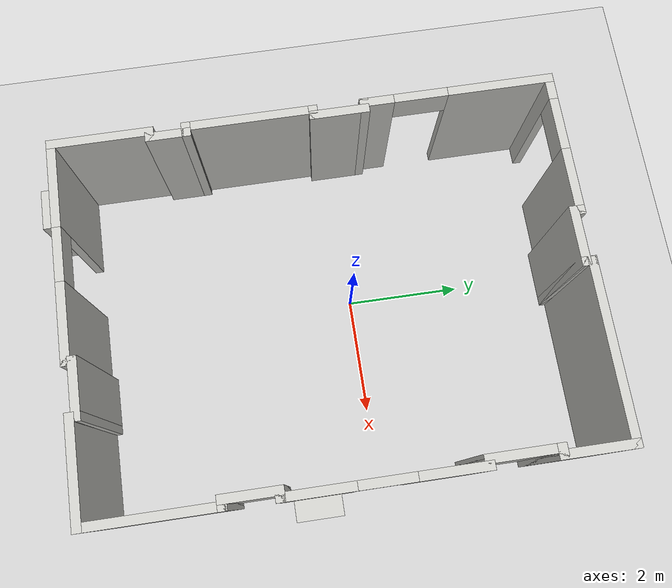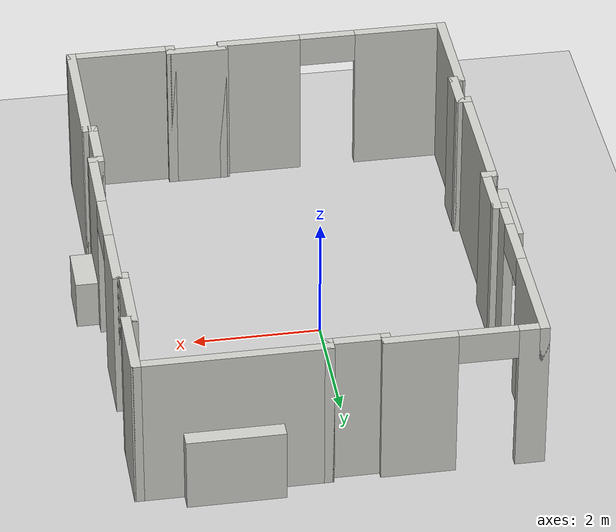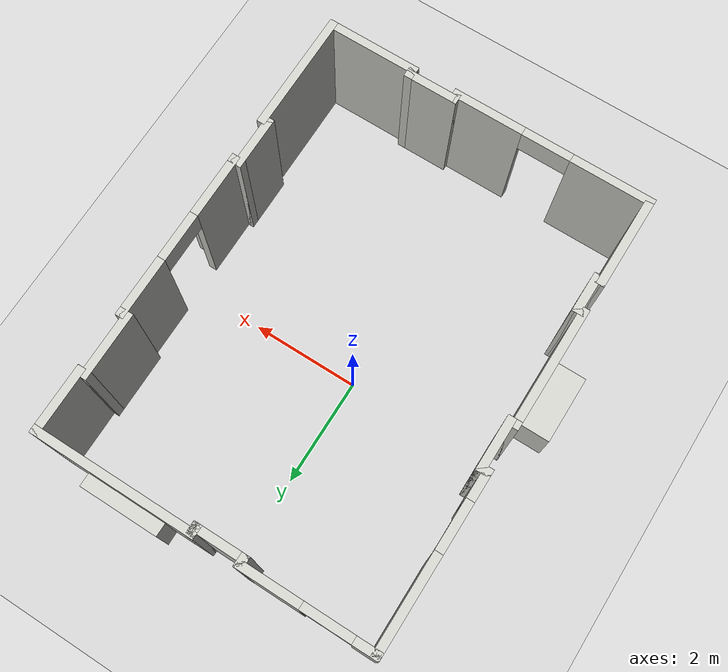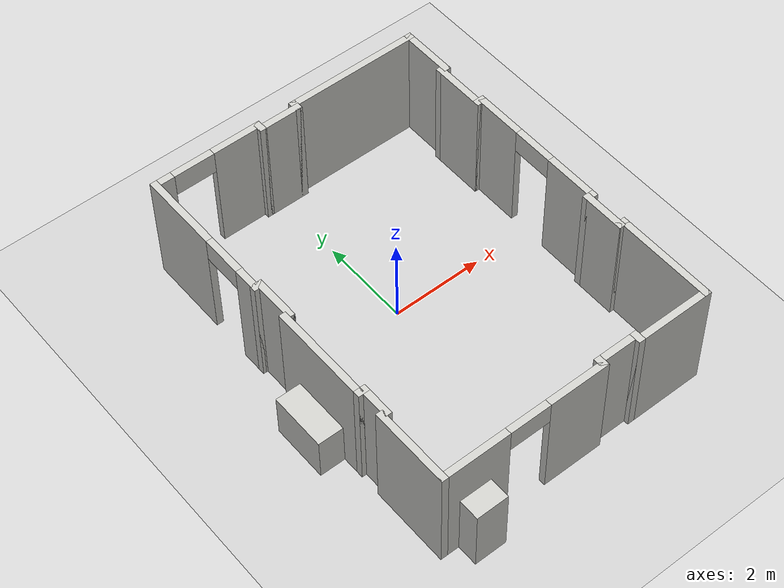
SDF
<sdf version="1.6">
 <world name="default">
  <model name="ground_plane">
   <static>1</static>
   <link name="link">
    <collision name="collision">
     <geometry><plane><normal>0 0 1</normal><size>100 100</size></plane></geometry>
     <surface><friction><ode><mu>100</mu><mu2>50</mu2></ode></friction></surface>
    </collision>
    <visual name="visual">
     <cast_shadows>0</cast_shadows>
     <geometry><plane><normal>0 0 1</normal><size>100 100</size></plane></geometry>
     <material>
      <script><uri>file://media/materials/scripts/gazebo.material</uri><name>Gazebo/Grey</name></script>
     </material>
    </visual>
   </link>
  </model>
  <model name="mcbryde_large">
   <pose>0.293658 -0.452731 0 0 -0 0</pose>
   <link name="Wall_0">
    <pose>-1.85 4.125 0 0 -0 0</pose>
    <visual name="Wall_0_Visual_0">
     <pose>-1.02043 0 1.25 0 -0 0</pose>
     <geometry><box><size>0.459131 0.15 2.5</size></box></geometry>
     <material>
      <script><uri>file://media/materials/scripts/gazebo.material</uri><name>Gazebo/CeilingTiled</name></script>
      <ambient>1 1 1 1</ambient>
     </material>
    </visual>
    <collision name="Wall_0_Collision_0">
     <geometry><box><size>0.459131 0.15 2.5</size></box></geometry>
     <pose>-1.02043 0 1.25 0 -0 0</pose>
    </collision>
    <visual name="Wall_0_Visual_1">
     <pose>0.679565 0 1.25 0 -0 0</pose>
     <geometry><box><size>1.14087 0.15 2.5</size></box></geometry>
     <material>
      <script><uri>file://media/materials/scripts/gazebo.material</uri><name>Gazebo/CeilingTiled</name></script>
      <ambient>1 1 1 1</ambient>
     </material>
    </visual>
    <collision name="Wall_0_Collision_1">
     <geometry><box><size>1.14087 0.15 2.5</size></box></geometry>
     <pose>0.679565 0 1.25 0 -0 0</pose>
    </collision>
    <visual name="Wall_0_Visual_2">
     <pose>-0.340869 0 2.25 0 -0 0</pose>
     <geometry><box><size>0.9 0.15 0.5</size></box></geometry>
     <material>
      <script><uri>file://media/materials/scripts/gazebo.material</uri><name>Gazebo/CeilingTiled</name></script>
      <ambient>1 1 1 1</ambient>
     </material>
    </visual>
    <collision name="Wall_0_Collision_2">
     <geometry><box><size>0.9 0.15 0.5</size></box></geometry>
     <pose>-0.340869 0 2.25 0 -0 0</pose>
    </collision>
   </link>
   <link name="Wall_10">
    <pose>3.025 0.375 0 0 0 -1.5708</pose>
    <visual name="Wall_10_Visual_0">
     <pose>-1.05477 0 1.25 0 -0 0</pose>
     <geometry><box><size>1.14046 0.15 2.5</size></box></geometry>
     <material>
      <script><uri>file://media/materials/scripts/gazebo.material</uri><name>Gazebo/CeilingTiled</name></script>
      <ambient>1 1 1 1</ambient>
     </material>
    </visual>
    <collision name="Wall_10_Collision_0">
     <geometry><box><size>1.14046 0.15 2.5</size></box></geometry>
     <pose>-1.05477 0 1.25 0 -0 0</pose>
    </collision>
    <visual name="Wall_10_Visual_1">
     <pose>1.02023 0 1.25 0 -0 0</pose>
     <geometry><box><size>1.20954 0.15 2.5</size></box></geometry>
     <material>
      <script><uri>file://media/materials/scripts/gazebo.material</uri><name>Gazebo/CeilingTiled</name></script>
      <ambient>1 1 1 1</ambient>
     </material>
    </visual>
    <collision name="Wall_10_Collision_1">
     <geometry><box><size>1.20954 0.15 2.5</size></box></geometry>
     <pose>1.02023 0 1.25 0 -0 0</pose>
    </collision>
    <visual name="Wall_10_Visual_2">
     <pose>-0.034537 0 2.25 0 -0 0</pose>
     <geometry><box><size>0.9 0.15 0.5</size></box></geometry>
     <material>
      <script><uri>file://media/materials/scripts/gazebo.material</uri><name>Gazebo/CeilingTiled</name></script>
      <ambient>1 1 1 1</ambient>
     </material>
    </visual>
    <collision name="Wall_10_Collision_2">
     <geometry><box><size>0.9 0.15 0.5</size></box></geometry>
     <pose>-0.034537 0 2.25 0 -0 0</pose>
    </collision>
    <visual name="Wall_10_Visual_3">
     <pose>1.02023 0.25 0.4 0 -0 0</pose>
     <geometry><box><size>0.8 0.35 0.8</size></box></geometry>
     <material>
      <script><uri>file://media/materials/scripts/gazebo.material</uri><name>Gazebo/CeilingTiled</name></script>
      <ambient>1 0.5 0.5 1</ambient>
     </material>
    </visual>
    <collision name="Wall_10_Collision_3">
     <geometry><box><size>0.8 0.35 0.8</size></box></geometry>
     <pose>1.02023 0.25 0.4 0 -0 0</pose>
    </collision>
   </link>
   <link name="Wall_11">
    <collision name="Wall_11_Collision">
     <geometry><box><size>0.25 0.15 2.5</size></box></geometry>
     <pose>0 0 1.25 0 -0 0</pose>
    </collision>
    <visual name="Wall_11_Visual">
     <pose>0 0 1.25 0 -0 0</pose>
     <geometry><box><size>0.25 0.15 2.5</size></box></geometry>
     <material>
      <script><uri>file://media/materials/scripts/gazebo.material</uri><name>Gazebo/CeilingTiled</name></script>
      <ambient>1 1 1 1</ambient>
     </material>
    </visual>
    <pose>2.975 -1.175 0 0 -0 3.14159</pose>
   </link>
   <link name="Wall_12">
    <collision name="Wall_12_Collision">
     <geometry><box><size>1 0.15 2.5</size></box></geometry>
     <pose>0 0 1.25 0 -0 0</pose>
    </collision>
    <visual name="Wall_12_Visual">
     <pose>0 0 1.25 0 -0 0</pose>
     <geometry><box><size>1 0.15 2.5</size></box></geometry>
     <material>
      <script><uri>file://media/materials/scripts/gazebo.material</uri><name>Gazebo/CeilingTiled</name></script>
      <ambient>1 1 1 1</ambient>
     </material>
    </visual>
    <pose>2.925 -1.6 0 0 0 -1.5708</pose>
   </link>
   <link name="Wall_14">
    <collision name="Wall_14_Collision">
     <geometry><box><size>0.25 0.15 2.5</size></box></geometry>
     <pose>0 0 1.25 0 -0 0</pose>
    </collision>
    <visual name="Wall_14_Visual">
     <pose>0 0 1.25 0 -0 0</pose>
     <geometry><box><size>0.25 0.15 2.5</size></box></geometry>
     <material>
      <script><uri>file://media/materials/scripts/gazebo.material</uri><name>Gazebo/CeilingTiled</name></script>
      <ambient>1 1 1 1</ambient>
     </material>
    </visual>
    <pose>2.975 -2.025 0 0 -0 0</pose>
   </link>
   <link name="Wall_15">
    <collision name="Wall_15_Collision">
     <geometry><box><size>2.25 0.15 2.5</size></box></geometry>
     <pose>0 0 1.25 0 -0 0</pose>
    </collision>
    <visual name="Wall_15_Visual">
     <pose>0 0 1.25 0 -0 0</pose>
     <geometry><box><size>2.25 0.15 2.5</size></box></geometry>
     <material>
      <script><uri>file://media/materials/scripts/gazebo.material</uri><name>Gazebo/CeilingTiled</name></script>
      <ambient>1 1 1 1</ambient>
     </material>
    </visual>
    <pose>3.025 -3.075 0 0 0 -1.5708</pose>
   </link>
   <link name="Wall_16">
    <collision name="Wall_16_Collision">
     <geometry><box><size>1.75 0.15 2.5</size></box></geometry>
     <pose>0 0 1.25 0 -0 0</pose>
    </collision>
    <visual name="Wall_16_Visual">
     <pose>0 0 1.25 0 -0 0</pose>
     <geometry><box><size>1.75 0.15 2.5</size></box></geometry>
     <material>
      <script><uri>file://media/materials/scripts/gazebo.material</uri><name>Gazebo/CeilingTiled</name></script>
      <ambient>1 1 1 1</ambient>
     </material>
    </visual>
    <pose>2.225 -4.125 0 0 -0 3.14159</pose>
   </link>
   <link name="Wall_17">
    <collision name="Wall_17_Collision">
     <geometry><box><size>0.25 0.15 2.5</size></box></geometry>
     <pose>0 0 1.25 0 -0 0</pose>
    </collision>
    <visual name="Wall_17_Visual">
     <pose>0 0 1.25 0 -0 0</pose>
     <geometry><box><size>0.25 0.15 2.5</size></box></geometry>
     <material>
      <script><uri>file://media/materials/scripts/gazebo.material</uri><name>Gazebo/CeilingTiled</name></script>
      <ambient>1 1 1 1</ambient>
     </material>
    </visual>
    <pose>1.425 -4.075 0 0 -0 1.5708</pose>
   </link>
   <link name="Wall_18">
    <collision name="Wall_18_Collision">
     <geometry><box><size>1 0.15 2.5</size></box></geometry>
     <pose>0 0 1.25 0 -0 0</pose>
    </collision>
    <visual name="Wall_18_Visual">
     <pose>0 0 1.25 0 -0 0</pose>
     <geometry><box><size>1 0.15 2.5</size></box></geometry>
     <material>
      <script><uri>file://media/materials/scripts/gazebo.material</uri><name>Gazebo/CeilingTiled</name></script>
      <ambient>1 1 1 1</ambient>
     </material>
    </visual>
    <pose>1 -4.025 0 0 -0 3.14159</pose>
   </link>
   <link name="Wall_19">
    <collision name="Wall_19_Collision">
     <geometry><box><size>0.25 0.15 2.5</size></box></geometry>
     <pose>0 0 1.25 0 -0 0</pose>
    </collision>
    <visual name="Wall_19_Visual">
     <pose>0 0 1.25 0 -0 0</pose>
     <geometry><box><size>0.25 0.15 2.5</size></box></geometry>
     <material>
      <script><uri>file://media/materials/scripts/gazebo.material</uri><name>Gazebo/CeilingTiled</name></script>
      <ambient>1 1 1 1</ambient>
     </material>
    </visual>
    <pose>0.575 -4.075 0 0 0 -1.5708</pose>
   </link>
   <link name="Wall_2">
    <collision name="Wall_2_Collision">
     <geometry><box><size>0.25 0.15 2.5</size></box></geometry>
     <pose>0 0 1.25 0 -0 0</pose>
    </collision>
    <visual name="Wall_2_Visual">
     <pose>0 0 1.25 0 -0 0</pose>
     <geometry><box><size>0.25 0.15 2.5</size></box></geometry>
     <material>
      <script><uri>file://media/materials/scripts/gazebo.material</uri><name>Gazebo/CeilingTiled</name></script>
      <ambient>1 1 1 1</ambient>
     </material>
    </visual>
    <pose>-0.675 4.075 0 0 0 -1.5708</pose>
   </link>
   <link name="Wall_20">
    <pose>-1.225 -4.125 0 0 -0 3.14159</pose>
    <visual name="Wall_20_Visual_0">
     <pose>-1.20427 0 1.25 0 -0 0</pose>
     <geometry><box><size>1.34147 0.15 2.5</size></box></geometry>
     <material>
      <script><uri>file://media/materials/scripts/gazebo.material</uri><name>Gazebo/CeilingTiled</name></script>
      <ambient>1 1 1 1</ambient>
     </material>
    </visual>
    <collision name="Wall_20_Collision_0">
     <geometry><box><size>1.34147 0.15 2.5</size></box></geometry>
     <pose>-1.20427 0 1.25 0 -0 0</pose>
    </collision>
    <visual name="Wall_20_Visual_1">
     <pose>1.12073 0 1.25 0 -0 0</pose>
     <geometry><box><size>1.50853 0.15 2.5</size></box></geometry>
     <material>
      <script><uri>file://media/materials/scripts/gazebo.material</uri><name>Gazebo/CeilingTiled</name></script>
      <ambient>1 1 1 1</ambient>
     </material>
    </visual>
    <collision name="Wall_20_Collision_1">
     <geometry><box><size>1.50853 0.15 2.5</size></box></geometry>
     <pose>1.12073 0 1.25 0 -0 0</pose>
    </collision>
    <visual name="Wall_20_Visual_2">
     <pose>-0.083534 0 2.25 0 -0 0</pose>
     <geometry><box><size>0.9 0.15 0.5</size></box></geometry>
     <material>
      <script><uri>file://media/materials/scripts/gazebo.material</uri><name>Gazebo/CeilingTiled</name></script>
      <ambient>1 1 1 1</ambient>
     </material>
    </visual>
    <collision name="Wall_20_Collision_2">
     <geometry><box><size>0.9 0.15 0.5</size></box></geometry>
     <pose>-0.083534 0 2.25 0 -0 0</pose>
    </collision>
    <visual name="Wall_20_Visual_3">
     <pose>1.12073 0.3 0.75 0 -0 0</pose>
     <geometry><box><size>0.7 0.45 1.5</size></box></geometry>
     <material>
      <script><uri>file://media/materials/scripts/gazebo.material</uri><name>Gazebo/CeilingTiled</name></script>
      <ambient>0.8 0.8 1 1</ambient>
     </material>
    </visual>
    <collision name="Wall_20_Collision_3">
     <geometry><box><size>0.7 0.45 1.5</size></box></geometry>
     <pose>1.12073 0.3 0.75 0 -0 0</pose>
    </collision>
   </link>
   <link name="Wall_21">
    <collision name="Wall_21_Collision">
     <geometry><box><size>1.75 0.15 2.5</size></box></geometry>
     <pose>0 0 1.25 0 -0 0</pose>
    </collision>
    <visual name="Wall_21_Visual">
     <pose>0 0 1.25 0 -0 0</pose>
     <geometry><box><size>1.75 0.15 2.5</size></box></geometry>
     <material>
      <script><uri>file://media/materials/scripts/gazebo.material</uri><name>Gazebo/CeilingTiled</name></script>
      <ambient>1 1 1 1</ambient>
     </material>
    </visual>
    <pose>-3.025 -3.325 0 0 -0 1.5708</pose>
   </link>
   <link name="Wall_22">
    <collision name="Wall_22_Collision">
     <geometry><box><size>0.25 0.15 2.5</size></box></geometry>
     <pose>0 0 1.25 0 -0 0</pose>
    </collision>
    <visual name="Wall_22_Visual">
     <pose>0 0 1.25 0 -0 0</pose>
     <geometry><box><size>0.25 0.15 2.5</size></box></geometry>
     <material>
      <script><uri>file://media/materials/scripts/gazebo.material</uri><name>Gazebo/CeilingTiled</name></script>
      <ambient>1 1 1 1</ambient>
     </material>
    </visual>
    <pose>-2.975 -2.525 0 0 -0 0</pose>
   </link>
   <link name="Wall_23">
    <collision name="Wall_23_Collision">
     <geometry><box><size>0.75 0.15 2.5</size></box></geometry>
     <pose>0 0 1.25 0 -0 0</pose>
    </collision>
    <visual name="Wall_23_Visual">
     <pose>0 0 1.25 0 -0 0</pose>
     <geometry><box><size>0.75 0.15 2.5</size></box></geometry>
     <material>
      <script><uri>file://media/materials/scripts/gazebo.material</uri><name>Gazebo/CeilingTiled</name></script>
      <ambient>1 1 1 1</ambient>
     </material>
    </visual>
    <pose>-2.925 -2.225 0 0 -0 1.5708</pose>
   </link>
   <link name="Wall_25">
    <collision name="Wall_25_Collision">
     <geometry><box><size>0.25 0.15 2.5</size></box></geometry>
     <pose>0 0 1.25 0 -0 0</pose>
    </collision>
    <visual name="Wall_25_Visual">
     <pose>0 0 1.25 0 -0 0</pose>
     <geometry><box><size>0.25 0.15 2.5</size></box></geometry>
     <material>
      <script><uri>file://media/materials/scripts/gazebo.material</uri><name>Gazebo/CeilingTiled</name></script>
      <ambient>1 1 1 1</ambient>
     </material>
    </visual>
    <pose>-2.975 -1.925 0 0 -0 3.14159</pose>
   </link>
   <link name="Wall_26">
    <collision name="Wall_26_Collision_0">
     <geometry><box><size>1.25 0.55 1.0</size></box></geometry>
     <pose>0 0.35 0.5 0 -0 0</pose>
    </collision>
    <visual name="Wall_26_Visual_0">
     <pose>0 0.35 0.5 0 -0 0</pose>
     <geometry><box><size>1.25 0.55 1.0</size></box></geometry>
     <material>
      <script><uri>file://media/materials/scripts/gazebo.material</uri><name>Gazebo/CeilingTiled</name></script>
      <ambient>1 1 0.7 1</ambient>
     </material>
    </visual>
    <collision name="Wall_26_Collision_1">
     <geometry><box><size>2.25 0.15 2.5</size></box></geometry>
     <pose>0 0 1.25 0 -0 0</pose>
    </collision>
    <visual name="Wall_26_Visual_1">
     <pose>0 0 1.25 0 -0 0</pose>
     <geometry><box><size>2.25 0.15 2.5</size></box></geometry>
     <material>
      <script><uri>file://media/materials/scripts/gazebo.material</uri><name>Gazebo/CeilingTiled</name></script>
      <ambient>1 1 1 1</ambient>
     </material>
    </visual>
    <pose>-3.025 -0.875 0 0 -0 1.5708</pose>
   </link>
   <link name="Wall_27">
    <collision name="Wall_27_Collision">
     <geometry><box><size>0.25 0.15 2.5</size></box></geometry>
     <pose>0 0 1.25 0 -0 0</pose>
    </collision>
    <visual name="Wall_27_Visual">
     <pose>0 0 1.25 0 -0 0</pose>
     <geometry><box><size>0.25 0.15 2.5</size></box></geometry>
     <material>
      <script><uri>file://media/materials/scripts/gazebo.material</uri><name>Gazebo/CeilingTiled</name></script>
      <ambient>1 1 1 1</ambient>
     </material>
    </visual>
    <pose>-2.975 0.175 0 0 -0 0</pose>
   </link>
   <link name="Wall_28">
    <collision name="Wall_28_Collision">
     <geometry><box><size>1 0.15 2.5</size></box></geometry>
     <pose>0 0 1.25 0 -0 0</pose>
    </collision>
    <visual name="Wall_28_Visual">
     <pose>0 0 1.25 0 -0 0</pose>
     <geometry><box><size>1 0.15 2.5</size></box></geometry>
     <material>
      <script><uri>file://media/materials/scripts/gazebo.material</uri><name>Gazebo/CeilingTiled</name></script>
      <ambient>1 1 1 1</ambient>
     </material>
    </visual>
    <pose>-2.925 0.6 0 0 -0 1.5708</pose>
   </link>
   <link name="Wall_29">
    <collision name="Wall_29_Collision">
     <geometry><box><size>0.25 0.15 2.5</size></box></geometry>
     <pose>0 0 1.25 0 -0 0</pose>
    </collision>
    <visual name="Wall_29_Visual">
     <pose>0 0 1.25 0 -0 0</pose>
     <geometry><box><size>0.25 0.15 2.5</size></box></geometry>
     <material>
      <script><uri>file://media/materials/scripts/gazebo.material</uri><name>Gazebo/CeilingTiled</name></script>
      <ambient>1 1 1 1</ambient>
     </material>
    </visual>
    <pose>-2.975 1.025 0 0 -0 3.14159</pose>
   </link>
   <link name="Wall_3">
    <collision name="Wall_3_Collision">
     <geometry><box><size>1 0.15 2.5</size></box></geometry>
     <pose>0 0 1.25 0 -0 0</pose>
    </collision>
    <visual name="Wall_3_Visual">
     <pose>0 0 1.25 0 -0 0</pose>
     <geometry><box><size>1 0.15 2.5</size></box></geometry>
     <material>
      <script><uri>file://media/materials/scripts/gazebo.material</uri><name>Gazebo/CeilingTiled</name></script>
      <ambient>1 1 1 1</ambient>
     </material>
    </visual>
    <pose>-0.25 4.025 0 0 -0 0</pose>
   </link>
   <link name="Wall_30">
    <pose>-3.025 2.575 0 0 -0 1.5708</pose>
    <visual name="Wall_30_Visual_0">
     <pose>-1.33698 0 1.25 0 -0 0</pose>
     <geometry><box><size>0.576038 0.15 2.5</size></box></geometry>
     <material>
      <script><uri>file://media/materials/scripts/gazebo.material</uri><name>Gazebo/CeilingTiled</name></script>
      <ambient>1 1 1 1</ambient>
     </material>
    </visual>
    <collision name="Wall_30_Collision_0">
     <geometry><box><size>0.576038 0.15 2.5</size></box></geometry>
     <pose>-1.33698 0 1.25 0 -0 0</pose>
    </collision>
    <visual name="Wall_30_Visual_1">
     <pose>0.738019 0 1.25 0 -0 0</pose>
     <geometry><box><size>1.77396 0.15 2.5</size></box></geometry>
     <material>
      <script><uri>file://media/materials/scripts/gazebo.material</uri><name>Gazebo/CeilingTiled</name></script>
      <ambient>1 1 1 1</ambient>
     </material>
    </visual>
    <collision name="Wall_30_Collision_1">
     <geometry><box><size>1.77396 0.15 2.5</size></box></geometry>
     <pose>0.738019 0 1.25 0 -0 0</pose>
    </collision>
    <visual name="Wall_30_Visual_2">
     <pose>-0.598962 0 2.25 0 -0 0</pose>
     <geometry><box><size>0.9 0.15 0.5</size></box></geometry>
     <material>
      <script><uri>file://media/materials/scripts/gazebo.material</uri><name>Gazebo/CeilingTiled</name></script>
      <ambient>1 1 1 1</ambient>
     </material>
    </visual>
    <collision name="Wall_30_Collision_2">
     <geometry><box><size>0.9 0.15 0.5</size></box></geometry>
     <pose>-0.598962 0 2.25 0 -0 0</pose>
    </collision>
   </link>
   <link name="Wall_4">
    <collision name="Wall_4_Collision">
     <geometry><box><size>0.25 0.15 2.5</size></box></geometry>
     <pose>0 0 1.25 0 -0 0</pose>
    </collision>
    <visual name="Wall_4_Visual">
     <pose>0 0 1.25 0 -0 0</pose>
     <geometry><box><size>0.25 0.15 2.5</size></box></geometry>
     <material>
      <script><uri>file://media/materials/scripts/gazebo.material</uri><name>Gazebo/CeilingTiled</name></script>
      <ambient>1 1 1 1</ambient>
     </material>
    </visual>
    <pose>0.175 4.075 0 0 -0 1.5708</pose>
   </link>
   <link name="Wall_5">
    <collision name="Wall_5_Collision_0">
     <geometry><box><size>3 0.15 2.5</size></box></geometry>
     <pose>0 0 1.25 0 -0 0</pose>
    </collision>
    <visual name="Wall_5_Visual_0">
     <pose>0 0 1.25 0 -0 0</pose>
     <geometry><box><size>3 0.15 2.5</size></box></geometry>
     <material>
      <script><uri>file://media/materials/scripts/gazebo.material</uri><name>Gazebo/CeilingTiled</name></script>
      <ambient>1 1 1 1</ambient>
     </material>
    </visual>
    <collision name="Wall_5_Collision_1">
     <geometry><box><size>1.5 0.25 1.2</size></box></geometry>
     <pose>0 0.2 0.6 0 -0 0</pose>
    </collision>
    <visual name="Wall_5_Visual_1">
     <pose>0 0.2 0.6 0 -0 0</pose>
     <geometry><box><size>1.5 0.25 1.2</size></box></geometry>
     <material>
      <script><uri>file://media/materials/scripts/gazebo.material</uri><name>Gazebo/CeilingTiled</name></script>
      <ambient>0.4 1 0.4 1</ambient>
     </material>
    </visual>
    <pose>1.6 4.125 0 0 -0 0</pose>
   </link>
   <link name="Wall_6">
    <collision name="Wall_6_Collision">
     <geometry><box><size>1.25 0.15 2.5</size></box></geometry>
     <pose>0 0 1.25 0 -0 0</pose>
    </collision>
    <visual name="Wall_6_Visual">
     <pose>0 0 1.25 0 -0 0</pose>
     <geometry><box><size>1.25 0.15 2.5</size></box></geometry>
     <material>
      <script><uri>file://media/materials/scripts/gazebo.material</uri><name>Gazebo/CeilingTiled</name></script>
      <ambient>1 1 1 1</ambient>
     </material>
    </visual>
    <pose>3.025 3.575 0 0 0 -1.5708</pose>
   </link>
   <link name="Wall_7">
    <collision name="Wall_7_Collision">
     <geometry><box><size>0.25 0.15 2.5</size></box></geometry>
     <pose>0 0 1.25 0 -0 0</pose>
    </collision>
    <visual name="Wall_7_Visual">
     <pose>0 0 1.25 0 -0 0</pose>
     <geometry><box><size>0.25 0.15 2.5</size></box></geometry>
     <material>
      <script><uri>file://media/materials/scripts/gazebo.material</uri><name>Gazebo/CeilingTiled</name></script>
      <ambient>1 1 1 1</ambient>
     </material>
    </visual>
    <pose>2.975 3.025 0 0 -0 3.14159</pose>
   </link>
   <link name="Wall_8">
    <collision name="Wall_8_Collision">
     <geometry><box><size>1.25 0.15 2.5</size></box></geometry>
     <pose>0 0 1.25 0 -0 0</pose>
    </collision>
    <visual name="Wall_8_Visual">
     <pose>0 0 1.25 0 -0 0</pose>
     <geometry><box><size>1.25 0.15 2.5</size></box></geometry>
     <material>
      <script><uri>file://media/materials/scripts/gazebo.material</uri><name>Gazebo/CeilingTiled</name></script>
      <ambient>1 1 1 1</ambient>
     </material>
    </visual>
    <pose>2.925 2.475 0 0 0 -1.5708</pose>
   </link>
   <link name="Wall_9">
    <collision name="Wall_9_Collision">
     <geometry><box><size>0.25 0.15 2.5</size></box></geometry>
     <pose>0 0 1.25 0 -0 0</pose>
    </collision>
    <visual name="Wall_9_Visual">
     <pose>0 0 1.25 0 -0 0</pose>
     <geometry><box><size>0.25 0.15 2.5</size></box></geometry>
     <material>
      <script><uri>file://media/materials/scripts/gazebo.material</uri><name>Gazebo/CeilingTiled</name></script>
      <ambient>1 1 1 1</ambient>
     </material>
    </visual>
    <pose>2.975 1.925 0 0 -0 0</pose>
   </link>
   <static>1</static>
  </model>
 </world>
</sdf>
